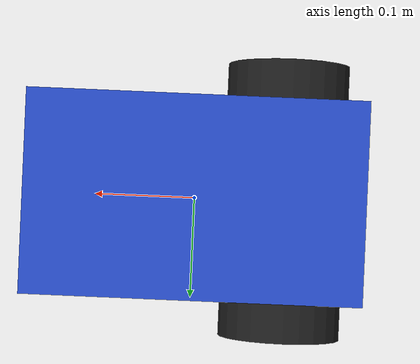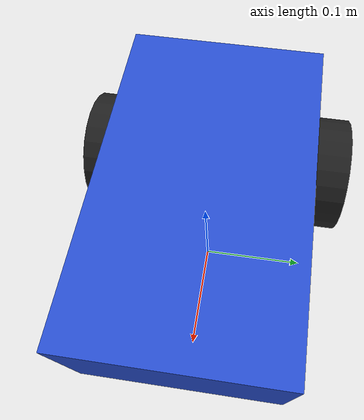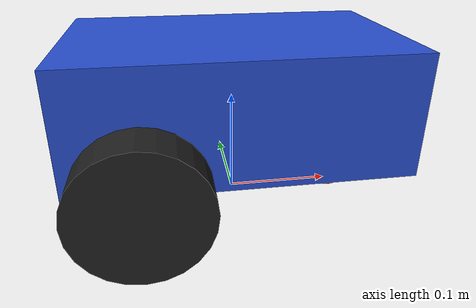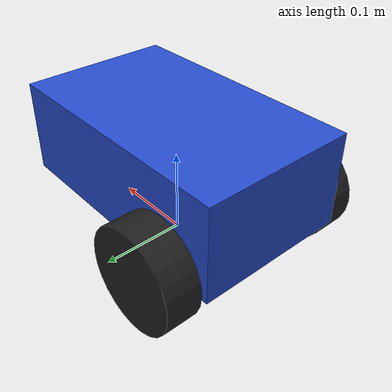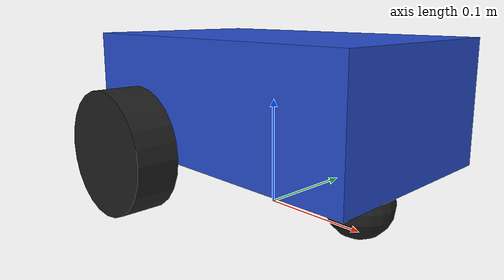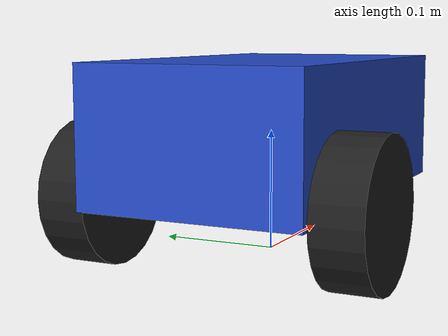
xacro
<?xml version="1.0"?>
<robot xmlns:xacro="http://www.ros.org/wiki/xacro">

    <!-- Variables -->
    <xacro:property name="chassis_length" value="0.3" />
    <xacro:property name="chassis_width" value="0.18" />
    <xacro:property name="chassis_height" value="0.11" />
    <xacro:property name="rear_axel_position" value="${chassis_length / -3.5}" />
    <xacro:property name="wheel_length" value="0.04" />
    <xacro:property name="wheel_radius" value="0.058" />
    <xacro:property name="shpere_radius" value="0.03" />

    <!-- Macros or Functions -->
    <xacro:macro name="create_new_wheel" params="prefix is_left" >
        <link name="${prefix}_wheel_link">
            <visual>
                <geometry>
                    <cylinder radius="${wheel_radius}" length="${wheel_length}" />
                </geometry>
                <origin xyz="0 0 0" rpy="-${pi / 2} 0 0" />
                <material name="black" />
            </visual>

            <xacro:cylinder_inertia m="0.5" r="${wheel_radius}" h="${wheel_length}" xyz="0 0 0" rpy="-${pi / 2} 0 0" />

            <collision>
                <geometry>
                    <cylinder radius="${wheel_radius}" length="${wheel_length}" />
                </geometry>
                <origin xyz="0 0 0" rpy="-${pi / 2} 0 0" />
            </collision>
        </link>
        <joint name="base_${prefix}_wheel_joint" type="continuous">
            <parent link="chassis_link" />
            <child link="${prefix}_wheel_link"/>
            <origin xyz="${rear_axel_position} ${0.11 * is_left} 0" rpy="0 0 0" />
            <axis xyz="0 1 0" />
        </joint>
    </xacro:macro>

    <!-- Base -->
    <link name="base_link">
        <origin xyz="0 0 0" rpy="0 0 0" />
    </link>

    <!-- Chassis -->
    <link name="chassis_link">
        <visual>
            <geometry>
                <box size="${chassis_length} ${chassis_width} ${chassis_height}" />
            </geometry>
            <origin xyz="0 0 0.05" rpy="0 0 0" />
            <material name="blue" />
        </visual>

        <xacro:box_inertia m="1.5" l="${chassis_length}" w="${chassis_width}" h="${chassis_height}" xyz="0 0 0.05" rpy="0 0 0"/>

        <collision>
            <geometry>
                <box size="${chassis_length} ${chassis_width} ${chassis_height}" />
            </geometry>
            <origin xyz="0 0 0.059" rpy="0 0 0"/>
        </collision>
    </link>
    <joint name="foot_base_joint" type="fixed">
        <parent link="base_link" />
        <child link="chassis_link"/>
        <origin xyz="0 0 0.055" rpy="0 0 0" />
    </joint>

    <!-- - Caster - -->
    <link name="caster_wheel_link">
        <visual>
            <geometry>
                <sphere radius="${shpere_radius}" />
            </geometry>
            <origin xyz="0 0 0" rpy="0 0 0" />
            <material name="black" />
        </visual>

        <xacro:shpere_inertia m="0.15" r="${shpere_radius}" xyz="0 0 0.05" rpy="0 0 0"/>

        <collision>
            <geometry>
                <sphere radius="${shpere_radius}" />
            </geometry>
            <origin xyz="0 0 0" rpy="0 0 0" />
        </collision>
    </link>
    <joint name="base_caster_wheel_joint" type="fixed">
        <parent link="chassis_link" />
        <child link="caster_wheel_link"/>
        <origin xyz=".1 0 -.029" rpy="0 0 0" />
    </joint>

    <!-- Drive Wheels -->
    <xacro:create_new_wheel prefix="right" is_left="1" />
    <xacro:create_new_wheel prefix="left" is_left="-1" />

    <!-- Mesh -->

</robot>
